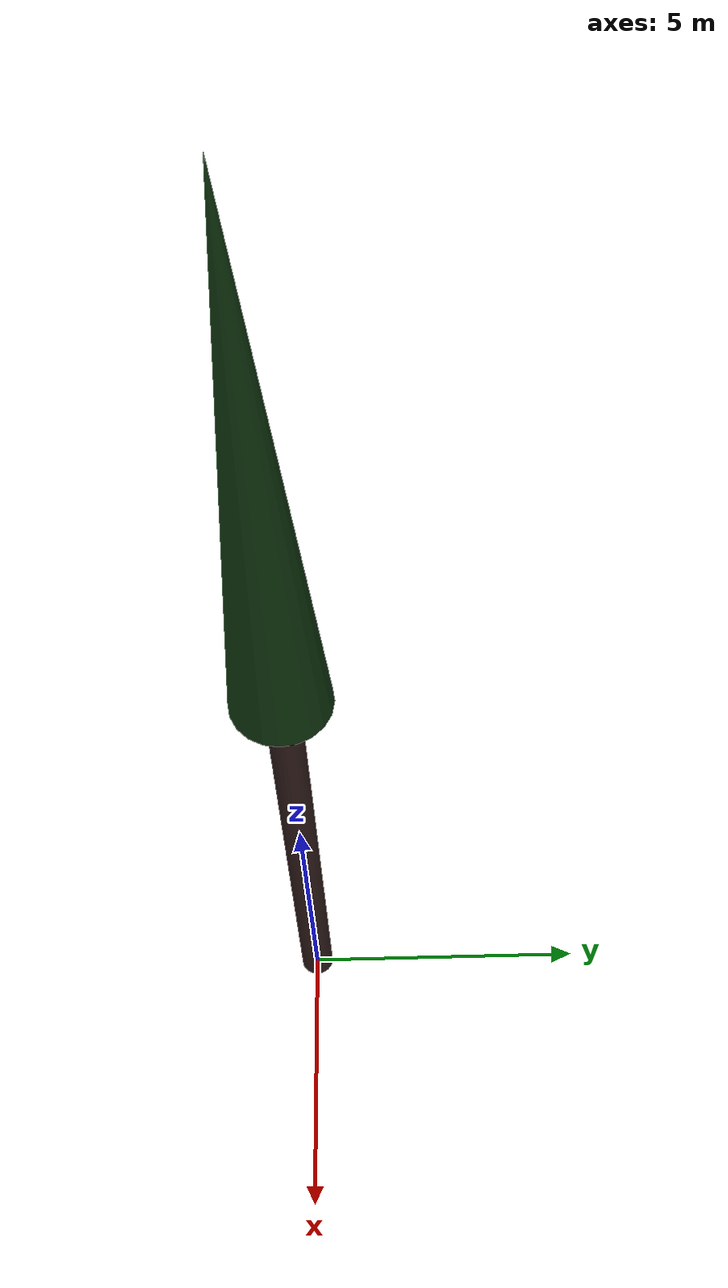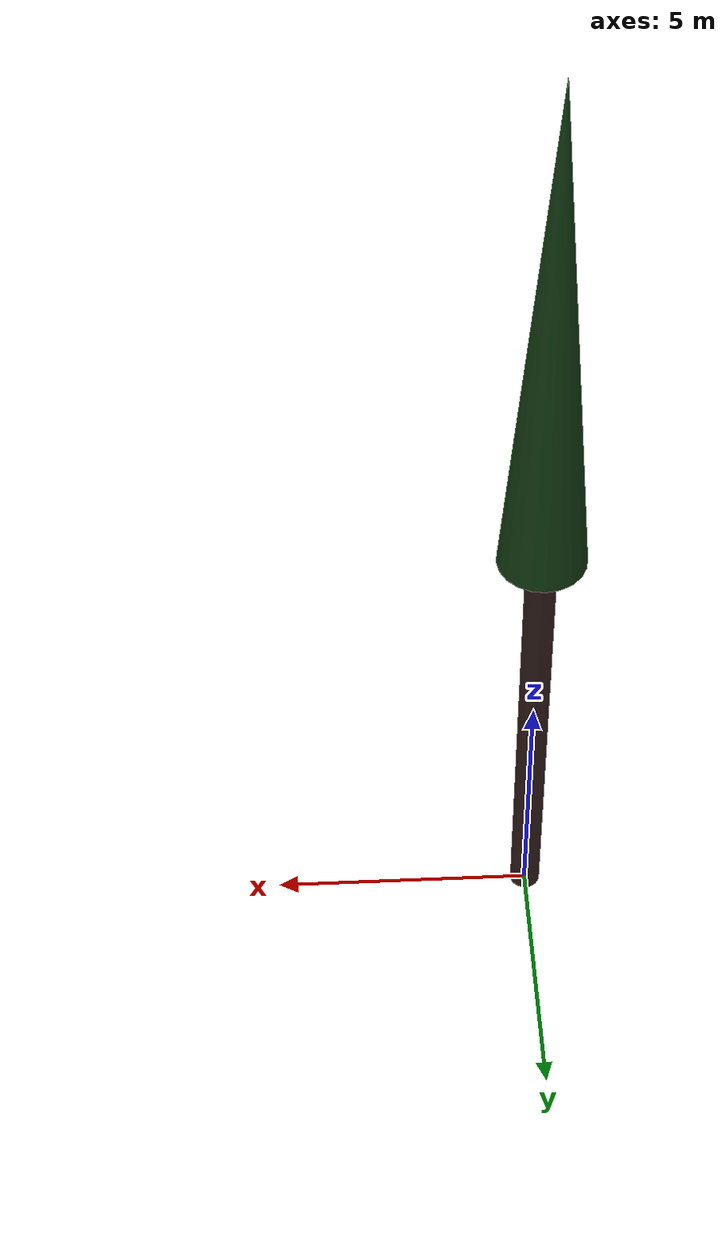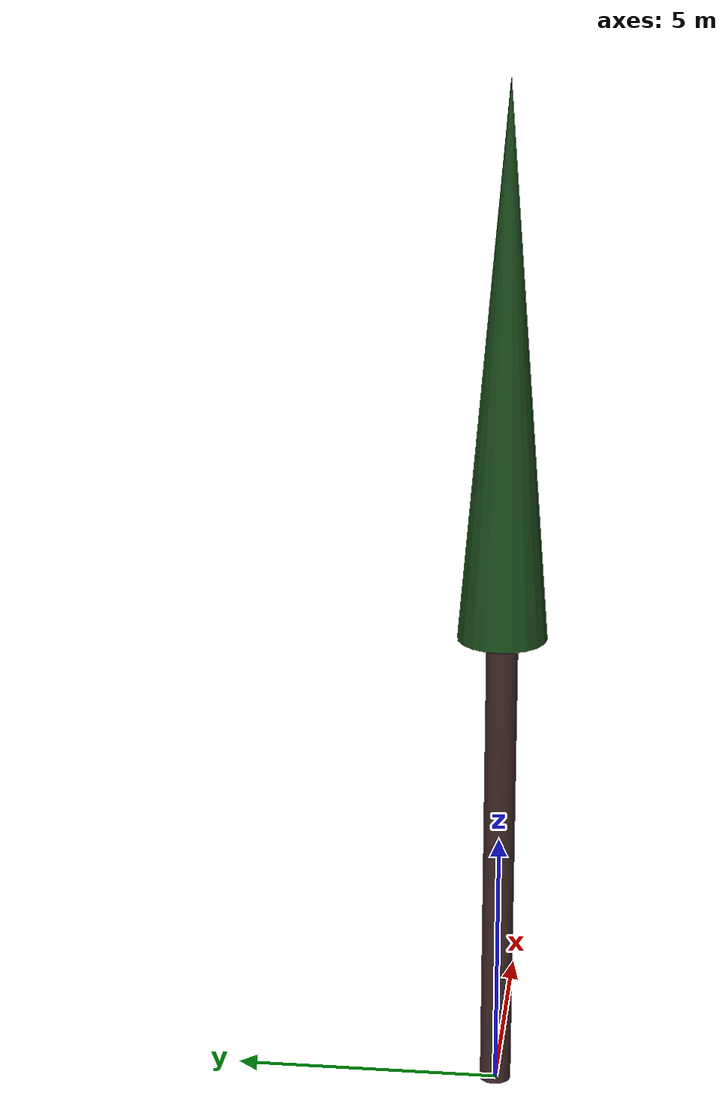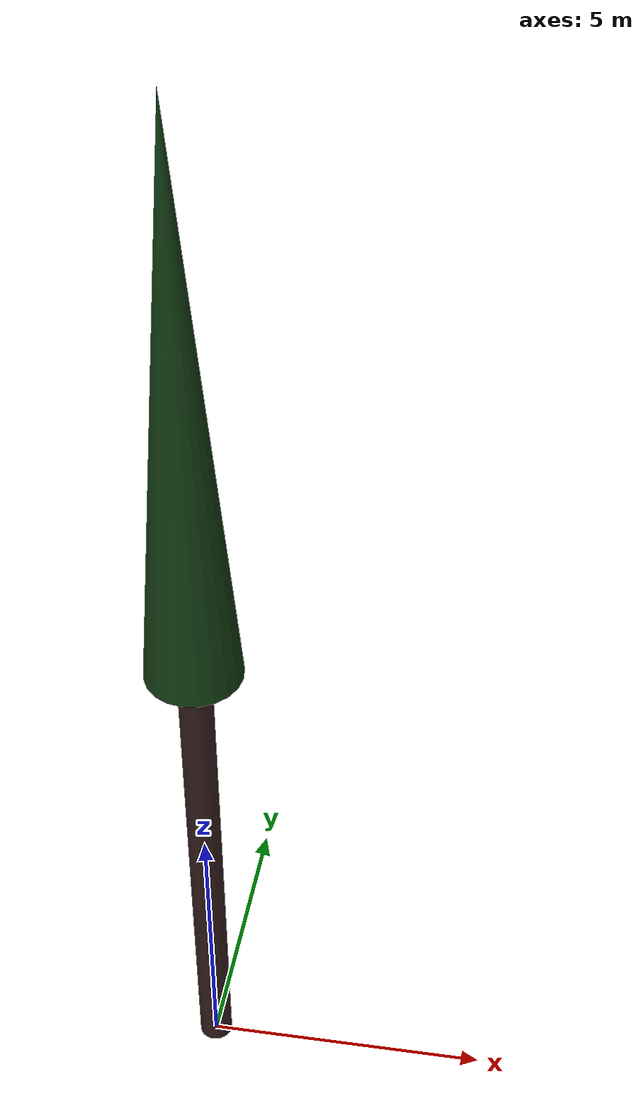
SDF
<?xml version="1.0" ?>
<sdf version="1.10">
  <model name="cypres_provence_05">
    <static>true</static>

    <!-- Tronc -->
    <link name="trunk">
      <pose>0 0 4.514962912145438 0 0 0</pose>
      <visual name="trunk_visual">
        <geometry>
          <cylinder>
            <radius>0.29245771344898525</radius>
            <length>9.029925824290876</length>
          </cylinder>
        </geometry>
        <material>
          <ambient>0.24 0.15 0.14 1</ambient>
          <diffuse>0.24 0.15 0.14 1</diffuse>
          <specular>0.1 0.1 0.1 1</specular>
        </material>
      </visual>
      <collision name="trunk_collision">
        <geometry>
          <cylinder>
            <radius>0.29245771344898525</radius>
            <length>9.029925824290876</length>
          </cylinder>
        </geometry>
      </collision>
    </link>

    <!-- Feuillage -->
    <link name="crown">
      <pose>0 0 14.159701453783576 0 0 0</pose>
      <visual name="crown_visual">
        <geometry>
          <cone>
              <radius>0.8287533692067565</radius>
              <length>10.259551258985402</length>
            </cone>
        </geometry>
        <material>
          <ambient>0.10 0.29 0.10 1</ambient>
          <diffuse>0.10 0.29 0.10 1</diffuse>
          <specular>0.1 0.1 0.1 1</specular>
        </material>
      </visual>
      <collision name="crown_collision">
        <geometry>
          <sphere>
            <radius>0.6630026953654052</radius>
          </sphere>
        </geometry>
      </collision>
    </link>

    <!-- Joint tronc-feuillage -->
    <joint name="trunk_crown_joint" type="fixed">
      <parent>trunk</parent>
      <child>crown</child>
    </joint>

  </model>
</sdf>
